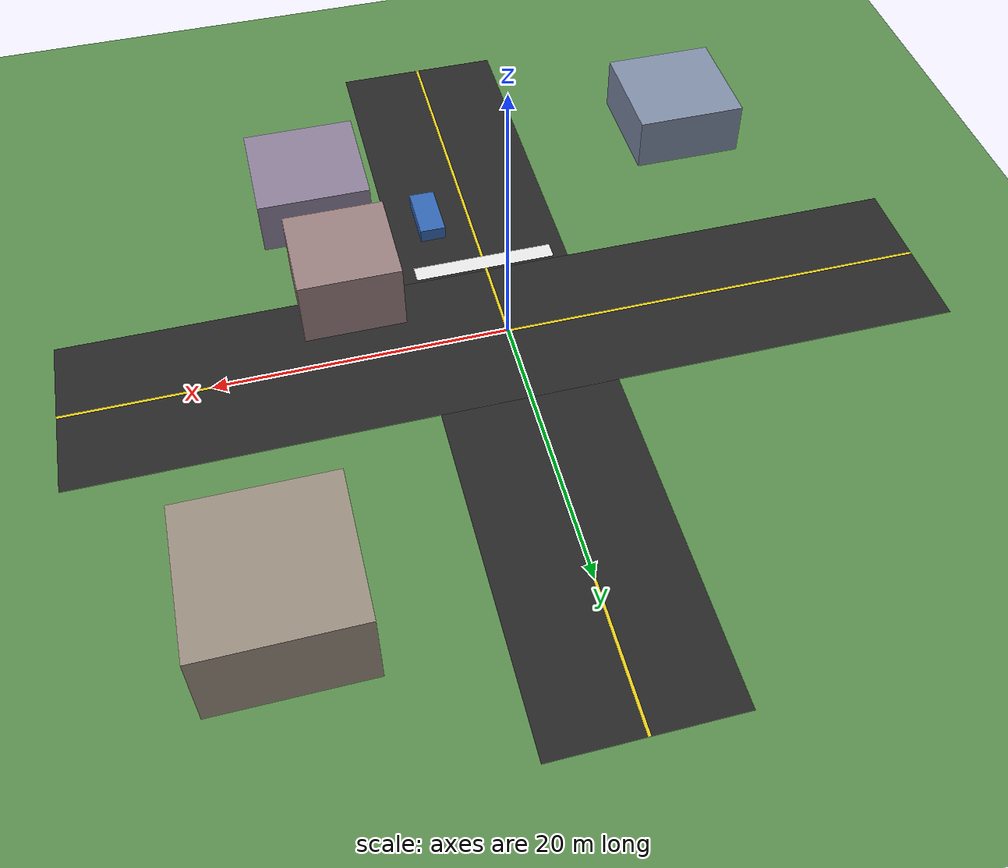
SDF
<sdf version="1.6">
 <world name="v2x_intersection">
  <physics type="ode">
   <real_time_update_rate>1000.0</real_time_update_rate>
   <max_step_size>0.001</max_step_size>
   <real_time_factor>1</real_time_factor>
  </physics>
  <scene><ambient>0.6 0.6 0.6 1</ambient><background>0.7 0.8 0.95 1</background><shadows>1</shadows></scene>
  <light type="directional" name="sun">
   <pose>0 0 10 0 0 0</pose>
   <diffuse>0.9 0.9 0.9 1</diffuse>
   <specular>0.2 0.2 0.2 1</specular>
   <attenuation>
    <range>1000</range>
    <constant>0.9</constant>
    <linear>0.01</linear>
    <quadratic>0.001</quadratic>
   </attenuation>
   <direction>-0.5 0.1 -0.9</direction>
  </light>
  <model name="ground_plane">
   <static>true</static>
   <link name="link">
    <collision name="collision">
     <geometry><plane><normal>0 0 1</normal><size>200 200</size></plane></geometry>
     <surface><friction><ode><mu>100</mu><mu2>50</mu2></ode></friction></surface>
    </collision>
    <visual name="visual">
     <geometry><plane><normal>0 0 1</normal><size>200 200</size></plane></geometry>
     <material><ambient>0.35 0.55 0.3 1</ambient><diffuse>0.35 0.55 0.3 1</diffuse></material>
    </visual>
   </link>
  </model>
  <model name="road_ns">
   <static>true</static>
   <link name="link">
    <pose>0 0 0.01 0 0 0</pose>
    <collision name="c"><geometry><box><size>12 60 0.02</size></box></geometry></collision>
    <visual name="v">
     <geometry><box><size>12 60 0.02</size></box></geometry>
     <material><ambient>0.15 0.15 0.15 1</ambient><diffuse>0.15 0.15 0.15 1</diffuse></material>
    </visual>
   </link>
  </model>
  <model name="road_ew">
   <static>true</static>
   <link name="link">
    <pose>0 0 0.015 0 0 0</pose>
    <collision name="c"><geometry><box><size>60 12 0.02</size></box></geometry></collision>
    <visual name="v">
     <geometry><box><size>60 12 0.02</size></box></geometry>
     <material><ambient>0.15 0.15 0.15 1</ambient><diffuse>0.15 0.15 0.15 1</diffuse></material>
    </visual>
   </link>
  </model>
  <model name="lane_line_ns">
   <static>true</static>
   <link name="link">
    <pose>0 0 0.03 0 0 0</pose>
    <visual name="v">
     <geometry><box><size>0.2 60 0.005</size></box></geometry>
     <material><ambient>0.9 0.8 0.1 1</ambient><diffuse>0.9 0.8 0.1 1</diffuse></material>
    </visual>
   </link>
  </model>
  <model name="lane_line_ew">
   <static>true</static>
   <link name="link">
    <pose>0 0 0.03 0 0 0</pose>
    <visual name="v">
     <geometry><box><size>60 0.2 0.005</size></box></geometry>
     <material><ambient>0.9 0.8 0.1 1</ambient><diffuse>0.9 0.8 0.1 1</diffuse></material>
    </visual>
   </link>
  </model>
  <model name="crosswalk_n">
   <static>true</static>
   <link name="link">
    <pose>0 -6.8 0.035 0 0 0</pose>
    <visual name="v">
     <geometry><box><size>10 1.2 0.005</size></box></geometry>
     <material><ambient>0.9 0.9 0.9 1</ambient><diffuse>0.9 0.9 0.9 1</diffuse></material>
    </visual>
   </link>
  </model>
  <model name="building_ne">
   <static>true</static>
   <link name="link">
    <pose>18 18 3 0 0 0</pose>
    <collision name="c"><geometry><box><size>10 10 6</size></box></geometry></collision>
    <visual name="v">
     <geometry><box><size>10 10 6</size></box></geometry>
     <material><ambient>0.6 0.55 0.5 1</ambient><diffuse>0.6 0.55 0.5 1</diffuse></material>
    </visual>
   </link>
  </model>
  <model name="building_sw">
   <static>true</static>
   <link name="link">
    <pose>-18 -18 2 0 0 0</pose>
    <collision name="c"><geometry><box><size>8 8 4</size></box></geometry></collision>
    <visual name="v">
     <geometry><box><size>8 8 4</size></box></geometry>
     <material><ambient>0.5 0.55 0.65 1</ambient><diffuse>0.5 0.55 0.65 1</diffuse></material>
    </visual>
   </link>
  </model>
  <model name="building_e1">
   <static>true</static>
   <link name="link">
    <pose>11 -16 2 0 0 0</pose>
    <collision name="c"><geometry><box><size>8 8 4</size></box></geometry></collision>
    <visual name="v">
     <geometry><box><size>8 8 4</size></box></geometry>
     <material><ambient>0.55 0.5 0.6 1</ambient><diffuse>0.55 0.5 0.6 1</diffuse></material>
    </visual>
   </link>
  </model>
  <model name="building_e2">
   <static>true</static>
   <link name="link">
    <pose>10 -6 2.5 0 0 0</pose>
    <collision name="c"><geometry><box><size>7 7 5</size></box></geometry></collision>
    <visual name="v">
     <geometry><box><size>7 7 5</size></box></geometry>
     <material><ambient>0.6 0.5 0.5 1</ambient><diffuse>0.6 0.5 0.5 1</diffuse></material>
    </visual>
   </link>
  </model>
  <model name="obstacle_1">
   <static>true</static>
   <link name="link">
    <pose>3 -12 0.5 0 0 0</pose>
    <collision name="c"><geometry><box><size>1.8 4 1</size></box></geometry></collision>
    <visual name="v">
     <geometry><box><size>1.8 4 1</size></box></geometry>
     <material><ambient>0.2 0.4 0.7 1</ambient><diffuse>0.2 0.4 0.7 1</diffuse></material>
    </visual>
   </link>
  </model>
  <plugin name="gazebo_ros_state" filename="libgazebo_ros_state.so"/>
 </world>
</sdf>
